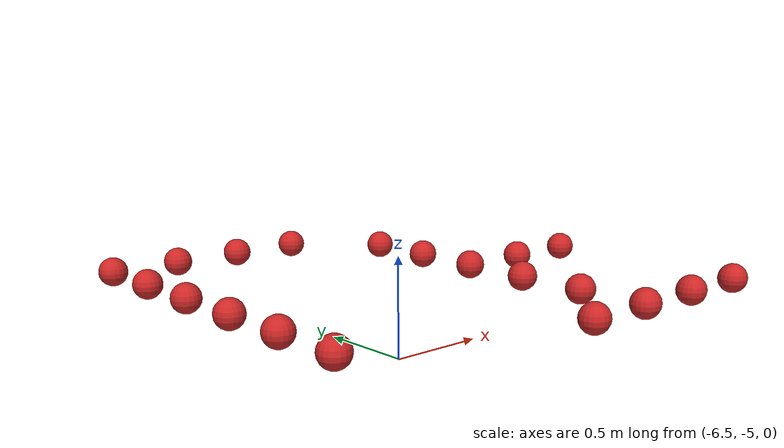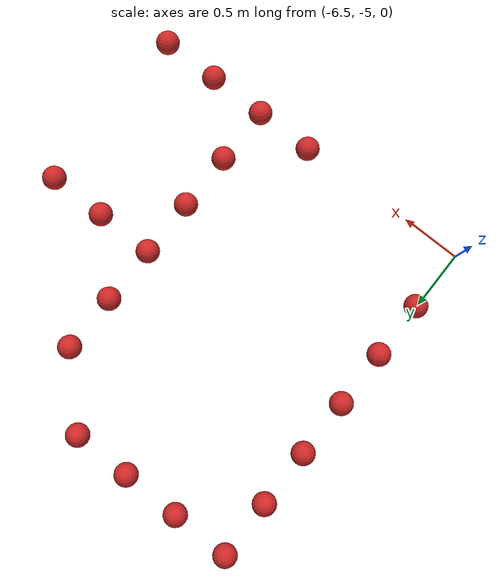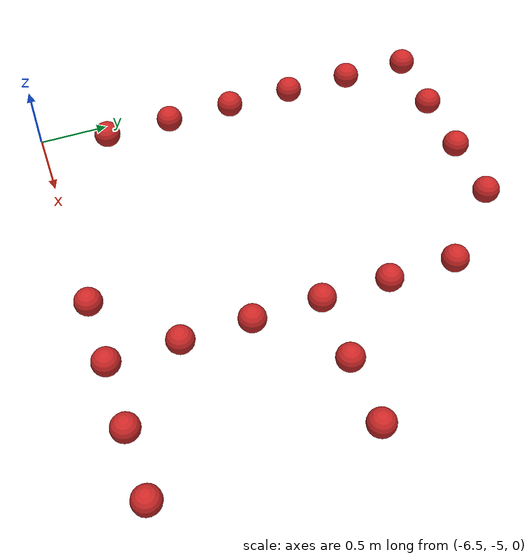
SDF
<sdf version="1.6">
 <model name="level1">
  <link name="Score_Point7">
   <collision name="Score_Point_Collision7">
    <geometry><sphere><radius>0.1</radius></sphere></geometry>
   </collision>
   <visual name="Score_Point_Visual7">
    <geometry><sphere><radius>0.1</radius></sphere></geometry>
    <material>
     <script><uri>file://media/materials/scripts/gazebo.material</uri><name>Gazebo/Red</name></script>
     <ambient>1 1 1 1</ambient>
    </material>
    <meta><layer>0</layer></meta>
   </visual>
   <pose>-6.5 -4.5 -0.08 0 0 0</pose>
   <script><uri>file://scripts/score_point_script.py</uri></script>
  </link>
  <link name="Score_Point8">
   <collision name="Score_Point_Collision8">
    <geometry><sphere><radius>0.1</radius></sphere></geometry>
   </collision>
   <visual name="Score_Point_Visual8">
    <geometry><sphere><radius>0.1</radius></sphere></geometry>
    <material>
     <script><uri>file://media/materials/scripts/gazebo.material</uri><name>Gazebo/Red</name></script>
     <ambient>1 1 1 1</ambient>
    </material>
    <meta><layer>0</layer></meta>
   </visual>
   <pose>-6.5 -4.0 -0.08 0 0 0</pose>
   <script><uri>file://scripts/score_point_script.py</uri></script>
  </link>
  <link name="Score_Point9">
   <collision name="Score_Point_Collision9">
    <geometry><sphere><radius>0.1</radius></sphere></geometry>
   </collision>
   <visual name="Score_Point_Visual9">
    <geometry><sphere><radius>0.1</radius></sphere></geometry>
    <material>
     <script><uri>file://media/materials/scripts/gazebo.material</uri><name>Gazebo/Red</name></script>
     <ambient>1 1 1 1</ambient>
    </material>
    <meta><layer>0</layer></meta>
   </visual>
   <pose>-6.5 -3.5 -0.08 0 0 0</pose>
   <script><uri>file://scripts/score_point_script.py</uri></script>
  </link>
  <link name="Score_Point10">
   <collision name="Score_Point_Collision10">
    <geometry><sphere><radius>0.1</radius></sphere></geometry>
   </collision>
   <visual name="Score_Point_Visual10">
    <geometry><sphere><radius>0.1</radius></sphere></geometry>
    <material>
     <script><uri>file://media/materials/scripts/gazebo.material</uri><name>Gazebo/Red</name></script>
     <ambient>1 1 1 1</ambient>
    </material>
    <meta><layer>0</layer></meta>
   </visual>
   <pose>-6.5 -3.0 -0.08 0 0 0</pose>
   <script><uri>file://scripts/score_point_script.py</uri></script>
  </link>
  <link name="Score_Point11">
   <collision name="Score_Point_Collision11">
    <geometry><sphere><radius>0.1</radius></sphere></geometry>
   </collision>
   <visual name="Score_Point_Visual11">
    <geometry><sphere><radius>0.1</radius></sphere></geometry>
    <material>
     <script><uri>file://media/materials/scripts/gazebo.material</uri><name>Gazebo/Red</name></script>
     <ambient>1 1 1 1</ambient>
    </material>
    <meta><layer>0</layer></meta>
   </visual>
   <pose>-6.5 -2.5 -0.08 0 0 0</pose>
   <script><uri>file://scripts/score_point_script.py</uri></script>
  </link>
  <link name="Score_Point12">
   <collision name="Score_Point_Collision12">
    <geometry><sphere><radius>0.1</radius></sphere></geometry>
   </collision>
   <visual name="Score_Point_Visual12">
    <geometry><sphere><radius>0.1</radius></sphere></geometry>
    <material>
     <script><uri>file://media/materials/scripts/gazebo.material</uri><name>Gazebo/Red</name></script>
     <ambient>1 1 1 1</ambient>
    </material>
    <meta><layer>0</layer></meta>
   </visual>
   <pose>-6.5 -2.0 -0.08 0 0 0</pose>
   <script><uri>file://scripts/score_point_script.py</uri></script>
  </link>
  <link name="Score_Point27">
   <collision name="Score_Point_Collision27">
    <geometry><sphere><radius>0.1</radius></sphere></geometry>
   </collision>
   <visual name="Score_Point_Visual27">
    <geometry><sphere><radius>0.1</radius></sphere></geometry>
    <material>
     <script><uri>file://media/materials/scripts/gazebo.material</uri><name>Gazebo/Red</name></script>
     <ambient>1 1 1 1</ambient>
    </material>
    <meta><layer>0</layer></meta>
   </visual>
   <pose>-6.0 -2.0 -0.08 0 0 0</pose>
   <script><uri>file://scripts/score_point_script.py</uri></script>
  </link>
  <link name="Score_Point32">
   <collision name="Score_Point_Collision32">
    <geometry><sphere><radius>0.1</radius></sphere></geometry>
   </collision>
   <visual name="Score_Point_Visual32">
    <geometry><sphere><radius>0.1</radius></sphere></geometry>
    <material>
     <script><uri>file://media/materials/scripts/gazebo.material</uri><name>Gazebo/Red</name></script>
     <ambient>1 1 1 1</ambient>
    </material>
    <meta><layer>0</layer></meta>
   </visual>
   <pose>-5.5 -2.0 -0.08 0 0 0</pose>
   <script><uri>file://scripts/score_point_script.py</uri></script>
  </link>
  <link name="Score_Point36">
   <collision name="Score_Point_Collision36">
    <geometry><sphere><radius>0.1</radius></sphere></geometry>
   </collision>
   <visual name="Score_Point_Visual36">
    <geometry><sphere><radius>0.1</radius></sphere></geometry>
    <material>
     <script><uri>file://media/materials/scripts/gazebo.material</uri><name>Gazebo/Red</name></script>
     <ambient>1 1 1 1</ambient>
    </material>
    <meta><layer>0</layer></meta>
   </visual>
   <pose>-5.0 -5.0 -0.08 0 0 0</pose>
   <script><uri>file://scripts/score_point_script.py</uri></script>
  </link>
  <link name="Score_Point37">
   <collision name="Score_Point_Collision37">
    <geometry><sphere><radius>0.1</radius></sphere></geometry>
   </collision>
   <visual name="Score_Point_Visual37">
    <geometry><sphere><radius>0.1</radius></sphere></geometry>
    <material>
     <script><uri>file://media/materials/scripts/gazebo.material</uri><name>Gazebo/Red</name></script>
     <ambient>1 1 1 1</ambient>
    </material>
    <meta><layer>0</layer></meta>
   </visual>
   <pose>-5.0 -2.0 -0.08 0 0 0</pose>
   <script><uri>file://scripts/score_point_script.py</uri></script>
  </link>
  <link name="Score_Point46">
   <collision name="Score_Point_Collision46">
    <geometry><sphere><radius>0.1</radius></sphere></geometry>
   </collision>
   <visual name="Score_Point_Visual46">
    <geometry><sphere><radius>0.1</radius></sphere></geometry>
    <material>
     <script><uri>file://media/materials/scripts/gazebo.material</uri><name>Gazebo/Red</name></script>
     <ambient>1 1 1 1</ambient>
    </material>
    <meta><layer>0</layer></meta>
   </visual>
   <pose>-4.5 -5.0 -0.08 0 0 0</pose>
   <script><uri>file://scripts/score_point_script.py</uri></script>
  </link>
  <link name="Score_Point47">
   <collision name="Score_Point_Collision47">
    <geometry><sphere><radius>0.1</radius></sphere></geometry>
   </collision>
   <visual name="Score_Point_Visual47">
    <geometry><sphere><radius>0.1</radius></sphere></geometry>
    <material>
     <script><uri>file://media/materials/scripts/gazebo.material</uri><name>Gazebo/Red</name></script>
     <ambient>1 1 1 1</ambient>
    </material>
    <meta><layer>0</layer></meta>
   </visual>
   <pose>-4.5 -4.5 -0.08 0 0 0</pose>
   <script><uri>file://scripts/score_point_script.py</uri></script>
  </link>
  <link name="Score_Point48">
   <collision name="Score_Point_Collision48">
    <geometry><sphere><radius>0.1</radius></sphere></geometry>
   </collision>
   <visual name="Score_Point_Visual48">
    <geometry><sphere><radius>0.1</radius></sphere></geometry>
    <material>
     <script><uri>file://media/materials/scripts/gazebo.material</uri><name>Gazebo/Red</name></script>
     <ambient>1 1 1 1</ambient>
    </material>
    <meta><layer>0</layer></meta>
   </visual>
   <pose>-4.5 -4.0 -0.08 0 0 0</pose>
   <script><uri>file://scripts/score_point_script.py</uri></script>
  </link>
  <link name="Score_Point49">
   <collision name="Score_Point_Collision49">
    <geometry><sphere><radius>0.1</radius></sphere></geometry>
   </collision>
   <visual name="Score_Point_Visual49">
    <geometry><sphere><radius>0.1</radius></sphere></geometry>
    <material>
     <script><uri>file://media/materials/scripts/gazebo.material</uri><name>Gazebo/Red</name></script>
     <ambient>1 1 1 1</ambient>
    </material>
    <meta><layer>0</layer></meta>
   </visual>
   <pose>-4.5 -3.5 -0.08 0 0 0</pose>
   <script><uri>file://scripts/score_point_script.py</uri></script>
  </link>
  <link name="Score_Point50">
   <collision name="Score_Point_Collision50">
    <geometry><sphere><radius>0.1</radius></sphere></geometry>
   </collision>
   <visual name="Score_Point_Visual50">
    <geometry><sphere><radius>0.1</radius></sphere></geometry>
    <material>
     <script><uri>file://media/materials/scripts/gazebo.material</uri><name>Gazebo/Red</name></script>
     <ambient>1 1 1 1</ambient>
    </material>
    <meta><layer>0</layer></meta>
   </visual>
   <pose>-4.5 -3.0 -0.08 0 0 0</pose>
   <script><uri>file://scripts/score_point_script.py</uri></script>
  </link>
  <link name="Score_Point51">
   <collision name="Score_Point_Collision51">
    <geometry><sphere><radius>0.1</radius></sphere></geometry>
   </collision>
   <visual name="Score_Point_Visual51">
    <geometry><sphere><radius>0.1</radius></sphere></geometry>
    <material>
     <script><uri>file://media/materials/scripts/gazebo.material</uri><name>Gazebo/Red</name></script>
     <ambient>1 1 1 1</ambient>
    </material>
    <meta><layer>0</layer></meta>
   </visual>
   <pose>-4.5 -2.5 -0.08 0 0 0</pose>
   <script><uri>file://scripts/score_point_script.py</uri></script>
  </link>
  <link name="Score_Point68">
   <collision name="Score_Point_Collision68">
    <geometry><sphere><radius>0.1</radius></sphere></geometry>
   </collision>
   <visual name="Score_Point_Visual68">
    <geometry><sphere><radius>0.1</radius></sphere></geometry>
    <material>
     <script><uri>file://media/materials/scripts/gazebo.material</uri><name>Gazebo/Red</name></script>
     <ambient>1 1 1 1</ambient>
    </material>
    <meta><layer>0</layer></meta>
   </visual>
   <pose>-4.0 -5.0 -0.08 0 0 0</pose>
   <script><uri>file://scripts/score_point_script.py</uri></script>
  </link>
  <link name="Score_Point69">
   <collision name="Score_Point_Collision69">
    <geometry><sphere><radius>0.1</radius></sphere></geometry>
   </collision>
   <visual name="Score_Point_Visual69">
    <geometry><sphere><radius>0.1</radius></sphere></geometry>
    <material>
     <script><uri>file://media/materials/scripts/gazebo.material</uri><name>Gazebo/Red</name></script>
     <ambient>1 1 1 1</ambient>
    </material>
    <meta><layer>0</layer></meta>
   </visual>
   <pose>-4.0 -3.5 -0.08 0 0 0</pose>
   <script><uri>file://scripts/score_point_script.py</uri></script>
  </link>
  <link name="Score_Point74">
   <collision name="Score_Point_Collision74">
    <geometry><sphere><radius>0.1</radius></sphere></geometry>
   </collision>
   <visual name="Score_Point_Visual74">
    <geometry><sphere><radius>0.1</radius></sphere></geometry>
    <material>
     <script><uri>file://media/materials/scripts/gazebo.material</uri><name>Gazebo/Red</name></script>
     <ambient>1 1 1 1</ambient>
    </material>
    <meta><layer>0</layer></meta>
   </visual>
   <pose>-3.5 -5.0 -0.08 0 0 0</pose>
   <script><uri>file://scripts/score_point_script.py</uri></script>
  </link>
  <link name="Score_Point75">
   <collision name="Score_Point_Collision75">
    <geometry><sphere><radius>0.1</radius></sphere></geometry>
   </collision>
   <visual name="Score_Point_Visual75">
    <geometry><sphere><radius>0.1</radius></sphere></geometry>
    <material>
     <script><uri>file://media/materials/scripts/gazebo.material</uri><name>Gazebo/Red</name></script>
     <ambient>1 1 1 1</ambient>
    </material>
    <meta><layer>0</layer></meta>
   </visual>
   <pose>-3.5 -3.5 -0.08 0 0 0</pose>
   <script><uri>file://scripts/score_point_script.py</uri></script>
  </link>
  <static>1</static>
 </model>
</sdf>
